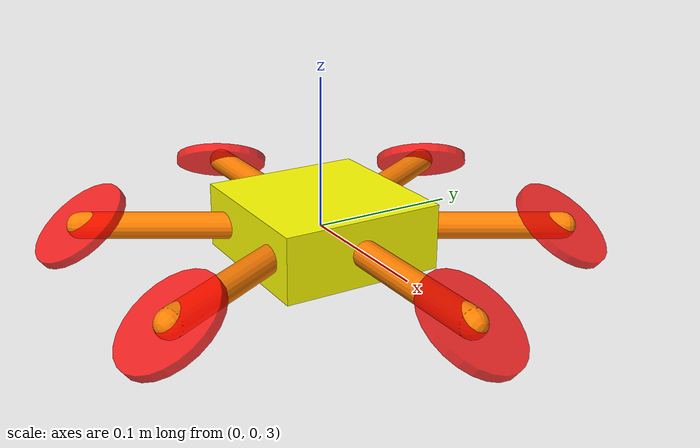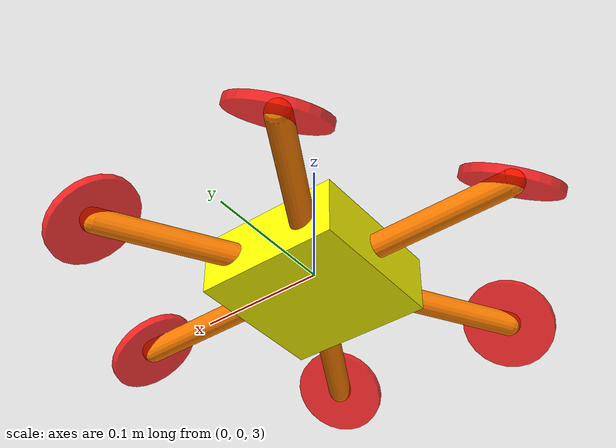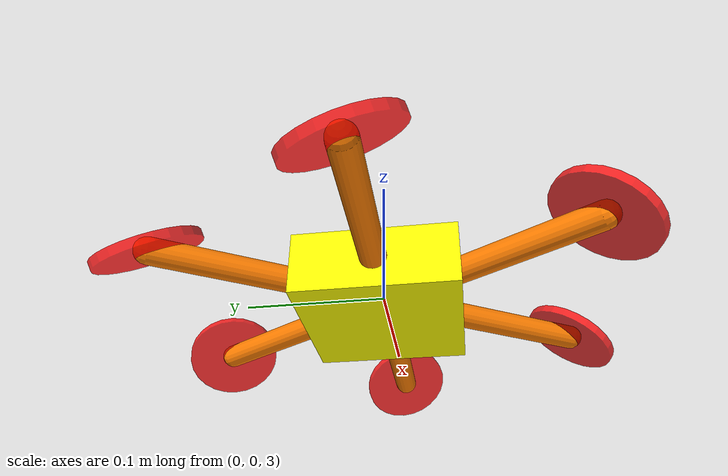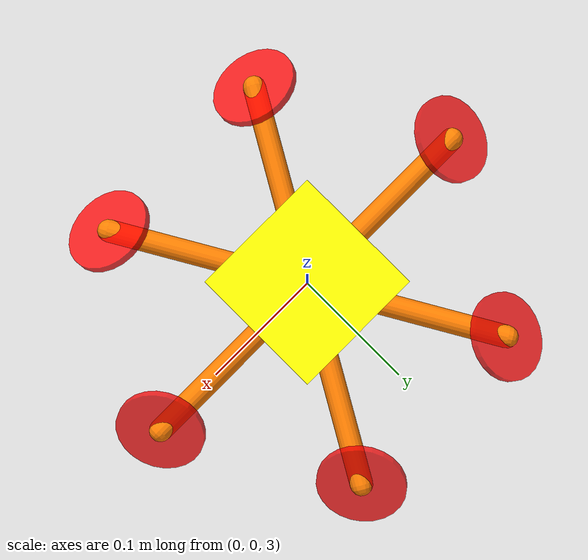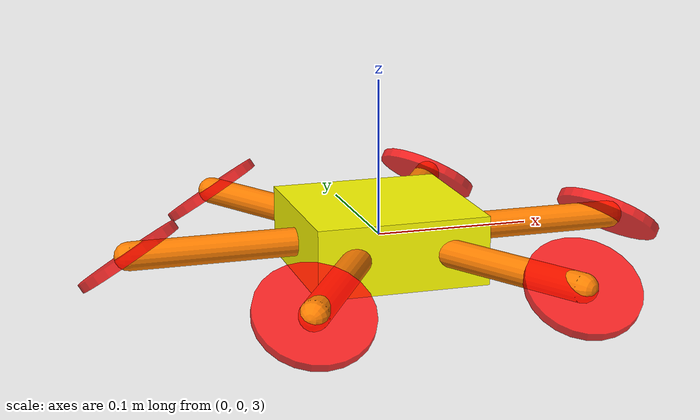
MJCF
<mujoco model="omnidirectional_hexrotor_wrench_validation">
  <compiler angle="radian"/>
  <option timestep="0.002" gravity="0 0 -9.81" integrator="RK4">
    <flag energy="enable" contact="enable"/>
  </option>

  <extension>
    <plugin plugin="MujocoRosUtils::RotorMotor"/>
  </extension>
  <asset>
    <texture name="texchecker" type="2d" builtin="checker" width="512" height="512" rgb1="0.8 0.8 0.8" rgb2="0.2 0.2 0.2"/>
    <material name="matchecker" texture="texchecker" texrepeat="15 15" reflectance="0.2"/>
  </asset>
  <worldbody>
    <light pos="0 0 7.5" dir="0 0 -1" directional="true"/>
    <geom name="floor" type="plane" size="30 30 0.1" material="matchecker" condim="3"/>
    <camera name="overview" pos="0 -1.35 2.25" xyaxes="1 0 0 0 0.86 0.51"/>
    <body name="omni_1" pos="0 0 3">
      <joint name="omni_1" type="free" damping="0.001"/>
      <inertial pos="0 0 0" mass="0.85" diaginertia="0.01 0.01 0.02"/>
      <geom name="omni_1_core" type="box" size="0.055 0.055 0.022" rgba="1 1 0 1"/>

      <geom name="omni_1_arm1"
            type="capsule"
            fromto="0 0 0 0.16 0 0"
            size="0.009"
            rgba="1 0.5 0 1"/>
      <geom name="omni_1_rotor1_marker"
            type="cylinder"
            pos="0.16 0 0.0"
            size="0.035 0.003"
            zaxis="0.4967317648921541 0.286788218175523 0.8191520442889919"
            rgba="1 0 0 0.8"/>
      <geom name="omni_1_arm2"
            type="capsule"
            fromto="0 0 0 0.08000000000000002 0.1385640646055102 0"
            size="0.009"
            rgba="1 0.5 0 1"/>
      <geom name="omni_1_rotor2_marker"
            type="cylinder"
            pos="0.08000000000000002 0.1385640646055102 0.0"
            size="0.035 0.003"
            zaxis="0.4967317648921541 0.286788218175523 0.8191520442889919"
            rgba="1 0 0 0.8"/>
      <geom name="omni_1_arm3"
            type="capsule"
            fromto="0 0 0 -0.07999999999999996 0.1385640646055102 0"
            size="0.009"
            rgba="1 0.5 0 1"/>
      <geom name="omni_1_rotor3_marker"
            type="cylinder"
            pos="-0.07999999999999996 0.1385640646055102 0.0"
            size="0.035 0.003"
            zaxis="-0.496731764892154 0.2867882181755232 0.8191520442889919"
            rgba="1 0 0 0.8"/>
      <geom name="omni_1_arm4"
            type="capsule"
            fromto="0 0 0 -0.16 1.959434878635765e-17 0"
            size="0.009"
            rgba="1 0.5 0 1"/>
      <geom name="omni_1_rotor4_marker"
            type="cylinder"
            pos="-0.16 1.959434878635765e-17 0.0"
            size="0.035 0.003"
            zaxis="-0.4967317648921541 0.286788218175523 0.8191520442889919"
            rgba="1 0 0 0.8"/>
      <geom name="omni_1_arm5"
            type="capsule"
            fromto="0 0 0 -0.08000000000000007 -0.1385640646055102 0"
            size="0.009"
            rgba="1 0.5 0 1"/>
      <geom name="omni_1_rotor5_marker"
            type="cylinder"
            pos="-0.08000000000000007 -0.1385640646055102 0.0"
            size="0.035 0.003"
            zaxis="-1.053642820265481e-16 -0.5735764363510462 0.8191520442889919"
            rgba="1 0 0 0.8"/>
      <geom name="omni_1_arm6"
            type="capsule"
            fromto="0 0 0 0.08000000000000002 -0.1385640646055102 0"
            size="0.009"
            rgba="1 0.5 0 1"/>
      <geom name="omni_1_rotor6_marker"
            type="cylinder"
            pos="0.08000000000000002 -0.1385640646055102 0.0"
            size="0.035 0.003"
            zaxis="-1.053642820265481e-16 -0.5735764363510462 0.8191520442889919"
            rgba="1 0 0 0.8"/>

      <site name="omni_1_rotor1_site"
            type="sphere"
            pos="0.16 0 0"
            zaxis="0.4967317648921541 0.286788218175523 0.8191520442889919"
            size="0.006"
            rgba="0 1 0 1"/>
      <site name="omni_1_rotor2_site"
            type="sphere"
            pos="0.08000000000000002 0.1385640646055102 0"
            zaxis="0.4967317648921541 0.286788218175523 0.8191520442889919"
            size="0.006"
            rgba="0 1 0 1"/>
      <site name="omni_1_rotor3_site"
            type="sphere"
            pos="-0.07999999999999996 0.1385640646055102 0"
            zaxis="-0.496731764892154 0.2867882181755232 0.8191520442889919"
            size="0.006"
            rgba="0 1 0 1"/>
      <site name="omni_1_rotor4_site"
            type="sphere"
            pos="-0.16 1.959434878635765e-17 0"
            zaxis="-0.4967317648921541 0.286788218175523 0.8191520442889919"
            size="0.006"
            rgba="0 1 0 1"/>
      <site name="omni_1_rotor5_site"
            type="sphere"
            pos="-0.08000000000000007 -0.1385640646055102 0"
            zaxis="-1.053642820265481e-16 -0.5735764363510462 0.8191520442889919"
            size="0.006"
            rgba="0 1 0 1"/>
      <site name="omni_1_rotor6_site"
            type="sphere"
            pos="0.08000000000000002 -0.1385640646055102 0"
            zaxis="-1.053642820265481e-16 -0.5735764363510462 0.8191520442889919"
            size="0.006"
            rgba="0 1 0 1"/>
      <site name="omni_1_imu" pos="0 0 0" size="0.006" rgba="0 1 1 1"/>
      <camera name="onboard" pos="0.06 0 -0.025" euler="0 0 -1.57079632679"/>
    </body>
  </worldbody>
  <actuator>

    <plugin name="omni_1_rotor1"
            site="omni_1_rotor1_site"
            plugin="MujocoRosUtils::RotorMotor"
            actdim="1"
            ctrlrange="0 3000"
            gear="0 0 1 0 0 0.015"
            nsample="8"
            delay="0.018"
            interp="zoh">
      <config key="kf" value="2.063751543951938e-06"/>
      <config key="tau" value="0.025"/>
    </plugin>
    <plugin name="omni_1_rotor2"
            site="omni_1_rotor2_site"
            plugin="MujocoRosUtils::RotorMotor"
            actdim="1"
            ctrlrange="0 3000"
            gear="0 0 1 0 0 -0.015"
            nsample="8"
            delay="0.018"
            interp="zoh">
      <config key="kf" value="2.063751543951938e-06"/>
      <config key="tau" value="0.025"/>
    </plugin>
    <plugin name="omni_1_rotor3"
            site="omni_1_rotor3_site"
            plugin="MujocoRosUtils::RotorMotor"
            actdim="1"
            ctrlrange="0 3000"
            gear="0 0 1 0 0 0.015"
            nsample="8"
            delay="0.018"
            interp="zoh">
      <config key="kf" value="2.063751543951938e-06"/>
      <config key="tau" value="0.025"/>
    </plugin>
    <plugin name="omni_1_rotor4"
            site="omni_1_rotor4_site"
            plugin="MujocoRosUtils::RotorMotor"
            actdim="1"
            ctrlrange="0 3000"
            gear="0 0 1 0 0 -0.015"
            nsample="8"
            delay="0.018"
            interp="zoh">
      <config key="kf" value="2.063751543951938e-06"/>
      <config key="tau" value="0.025"/>
    </plugin>
    <plugin name="omni_1_rotor5"
            site="omni_1_rotor5_site"
            plugin="MujocoRosUtils::RotorMotor"
            actdim="1"
            ctrlrange="0 3000"
            gear="0 0 1 0 0 0.015"
            nsample="8"
            delay="0.018"
            interp="zoh">
      <config key="kf" value="2.063751543951938e-06"/>
      <config key="tau" value="0.025"/>
    </plugin>
    <plugin name="omni_1_rotor6"
            site="omni_1_rotor6_site"
            plugin="MujocoRosUtils::RotorMotor"
            actdim="1"
            ctrlrange="0 3000"
            gear="0 0 1 0 0 -0.015"
            nsample="8"
            delay="0.018"
            interp="zoh">
      <config key="kf" value="2.063751543951938e-06"/>
      <config key="tau" value="0.025"/>
    </plugin>
  </actuator>
</mujoco>
